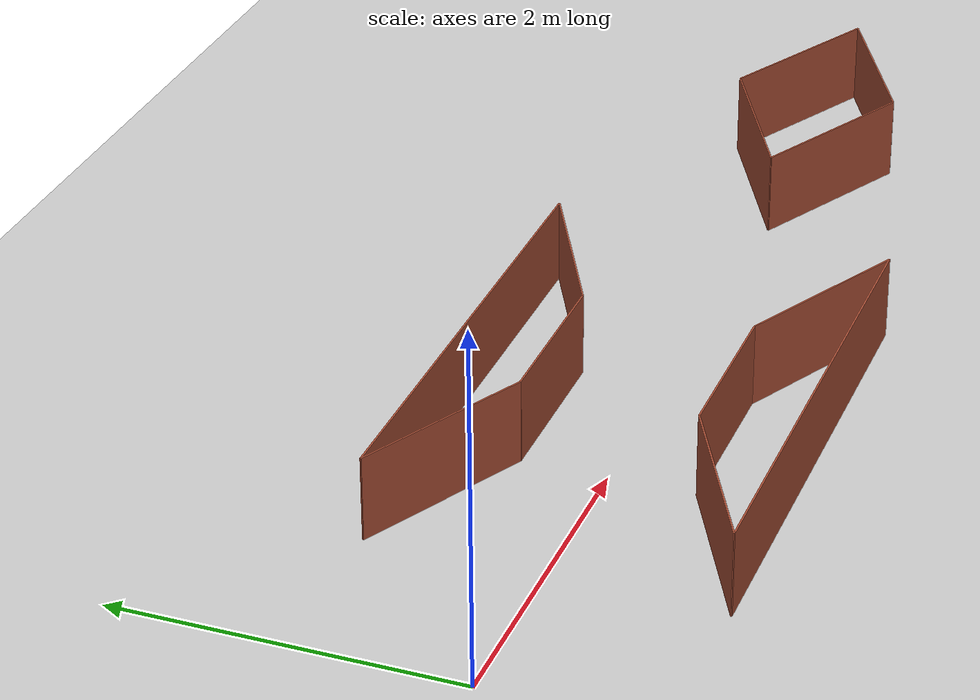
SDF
<?xml version="1.0"?>
 <sdf version="1.6">
  <world name="default">

  <include>
   <uri>model://ground_plane</uri>
  </include>

  <include>
   <uri>model://sun</uri>
  </include>

  <scene>
   <shadows>false</shadows>
  </scene>

  <gui fullscreen='0'>
   <camera name='user_camera'>
    <pose frame=''>0.319654 -0.235002 9.29441 0 1.5138 0.009599</pose>
    <view_controller>orbit</view_controller>
    <projection_type>perspective</projection_type>
   </camera>
  </gui>

  <physics type="ode">
   <real_time_update_rate>1000.0</real_time_update_rate>
   <max_step_size>0.001</max_step_size>
   <real_time_factor>1</real_time_factor>
   <ode>
    <solver>
     <type>quick</type>
     <iters>150</iters>
     <precon_iters>0</precon_iters>
     <sor>1.400000</sor>
     <use_dynamic_moi_rescaling>1</use_dynamic_moi_rescaling>
    </solver>

    <constraints>
     <cfm>0.00001</cfm>
     <erp>0.2</erp>
     <contact_max_correcting_vel>2000.000000</contact_max_correcting_vel>
     <contact_surface_layer>0.01000</contact_surface_layer>
    </constraints>

   </ode>
  </physics>

  <model name="formation4_mixed">
   <static>1</static>
   <include>
    <uri>model://formation4_mixed</uri>
   </include>
  </model>

 </world>
</sdf>

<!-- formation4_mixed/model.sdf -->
<sdf version='1.5'>
                <!-- This SDF file is for enlarging environment -->
                <model name='ros_symbol'>
                    <static>1</static>
                    <link name='symbol'>

            <collision name='obs_wall_1'>
                <pose>2.5 1.0 0.25 0 0 0.000</pose>
                <geometry>
                    <box><size>3.000 0.01 0.5</size></box>
                </geometry>
                <max_contacts>10</max_contacts>
                <surface><bounce/><friction><ode/></friction><contact><ode/></contact></surface>
            </collision>

            <visual name='obs_wall_1'>
                <pose>2.5 1.0 0.25 0 0 0.000</pose>
                <geometry>
                    <box><size>3.000 0.01 0.5</size></box>
                </geometry>
                <material>
                    <script>
                        <uri>file://media/materials/scripts/gazebo.material</uri>
                        <name>Gazebo/Bricks</name>
                    </script>
                </material>
            </visual>

            <collision name='obs_wall_2'>
                <pose>3.5 0.75 0.25 0 0 -2.678</pose>
                <geometry>
                    <box><size>1.118 0.01 0.5</size></box>
                </geometry>
                <max_contacts>10</max_contacts>
                <surface><bounce/><friction><ode/></friction><contact><ode/></contact></surface>
            </collision>

            <visual name='obs_wall_2'>
                <pose>3.5 0.75 0.25 0 0 -2.678</pose>
                <geometry>
                    <box><size>1.118 0.01 0.5</size></box>
                </geometry>
                <material>
                    <script>
                        <uri>file://media/materials/scripts/gazebo.material</uri>
                        <name>Gazebo/Bricks</name>
                    </script>
                </material>
            </visual>

            <collision name='obs_wall_3'>
                <pose>2.5 0.5 0.25 0 0 3.142</pose>
                <geometry>
                    <box><size>1.000 0.01 0.5</size></box>
                </geometry>
                <max_contacts>10</max_contacts>
                <surface><bounce/><friction><ode/></friction><contact><ode/></contact></surface>
            </collision>

            <visual name='obs_wall_3'>
                <pose>2.5 0.5 0.25 0 0 3.142</pose>
                <geometry>
                    <box><size>1.000 0.01 0.5</size></box>
                </geometry>
                <material>
                    <script>
                        <uri>file://media/materials/scripts/gazebo.material</uri>
                        <name>Gazebo/Bricks</name>
                    </script>
                </material>
            </visual>

            <collision name='obs_wall_4'>
                <pose>1.5 0.75 0.25 0 0 2.678</pose>
                <geometry>
                    <box><size>1.118 0.01 0.5</size></box>
                </geometry>
                <max_contacts>10</max_contacts>
                <surface><bounce/><friction><ode/></friction><contact><ode/></contact></surface>
            </collision>

            <visual name='obs_wall_4'>
                <pose>1.5 0.75 0.25 0 0 2.678</pose>
                <geometry>
                    <box><size>1.118 0.01 0.5</size></box>
                </geometry>
                <material>
                    <script>
                        <uri>file://media/materials/scripts/gazebo.material</uri>
                        <name>Gazebo/Bricks</name>
                    </script>
                </material>
            </visual>

            <collision name='obs_wall_5'>
                <pose>2.5 -1.0 0.25 0 0 0.000</pose>
                <geometry>
                    <box><size>3.000 0.01 0.5</size></box>
                </geometry>
                <max_contacts>10</max_contacts>
                <surface><bounce/><friction><ode/></friction><contact><ode/></contact></surface>
            </collision>

            <visual name='obs_wall_5'>
                <pose>2.5 -1.0 0.25 0 0 0.000</pose>
                <geometry>
                    <box><size>3.000 0.01 0.5</size></box>
                </geometry>
                <material>
                    <script>
                        <uri>file://media/materials/scripts/gazebo.material</uri>
                        <name>Gazebo/Bricks</name>
                    </script>
                </material>
            </visual>

            <collision name='obs_wall_6'>
                <pose>3.5 -0.75 0.25 0 0 2.678</pose>
                <geometry>
                    <box><size>1.118 0.01 0.5</size></box>
                </geometry>
                <max_contacts>10</max_contacts>
                <surface><bounce/><friction><ode/></friction><contact><ode/></contact></surface>
            </collision>

            <visual name='obs_wall_6'>
                <pose>3.5 -0.75 0.25 0 0 2.678</pose>
                <geometry>
                    <box><size>1.118 0.01 0.5</size></box>
                </geometry>
                <material>
                    <script>
                        <uri>file://media/materials/scripts/gazebo.material</uri>
                        <name>Gazebo/Bricks</name>
                    </script>
                </material>
            </visual>

            <collision name='obs_wall_7'>
                <pose>2.5 -0.5 0.25 0 0 3.142</pose>
                <geometry>
                    <box><size>1.000 0.01 0.5</size></box>
                </geometry>
                <max_contacts>10</max_contacts>
                <surface><bounce/><friction><ode/></friction><contact><ode/></contact></surface>
            </collision>

            <visual name='obs_wall_7'>
                <pose>2.5 -0.5 0.25 0 0 3.142</pose>
                <geometry>
                    <box><size>1.000 0.01 0.5</size></box>
                </geometry>
                <material>
                    <script>
                        <uri>file://media/materials/scripts/gazebo.material</uri>
                        <name>Gazebo/Bricks</name>
                    </script>
                </material>
            </visual>

            <collision name='obs_wall_8'>
                <pose>1.5 -0.75 0.25 0 0 -2.678</pose>
                <geometry>
                    <box><size>1.118 0.01 0.5</size></box>
                </geometry>
                <max_contacts>10</max_contacts>
                <surface><bounce/><friction><ode/></friction><contact><ode/></contact></surface>
            </collision>

            <visual name='obs_wall_8'>
                <pose>1.5 -0.75 0.25 0 0 -2.678</pose>
                <geometry>
                    <box><size>1.118 0.01 0.5</size></box>
                </geometry>
                <material>
                    <script>
                        <uri>file://media/materials/scripts/gazebo.material</uri>
                        <name>Gazebo/Bricks</name>
                    </script>
                </material>
            </visual>

            <collision name='obs_wall_9'>
                <pose>5.5 0.25 0.25 0 0 0.464</pose>
                <geometry>
                    <box><size>1.118 0.01 0.5</size></box>
                </geometry>
                <max_contacts>10</max_contacts>
                <surface><bounce/><friction><ode/></friction><contact><ode/></contact></surface>
            </collision>

            <visual name='obs_wall_9'>
                <pose>5.5 0.25 0.25 0 0 0.464</pose>
                <geometry>
                    <box><size>1.118 0.01 0.5</size></box>
                </geometry>
                <material>
                    <script>
                        <uri>file://media/materials/scripts/gazebo.material</uri>
                        <name>Gazebo/Bricks</name>
                    </script>
                </material>
            </visual>

            <collision name='obs_wall_10'>
                <pose>6.5 0.25 0.25 0 0 -0.464</pose>
                <geometry>
                    <box><size>1.118 0.01 0.5</size></box>
                </geometry>
                <max_contacts>10</max_contacts>
                <surface><bounce/><friction><ode/></friction><contact><ode/></contact></surface>
            </collision>

            <visual name='obs_wall_10'>
                <pose>6.5 0.25 0.25 0 0 -0.464</pose>
                <geometry>
                    <box><size>1.118 0.01 0.5</size></box>
                </geometry>
                <material>
                    <script>
                        <uri>file://media/materials/scripts/gazebo.material</uri>
                        <name>Gazebo/Bricks</name>
                    </script>
                </material>
            </visual>

            <collision name='obs_wall_11'>
                <pose>6.5 -0.25 0.25 0 0 -2.678</pose>
                <geometry>
                    <box><size>1.118 0.01 0.5</size></box>
                </geometry>
                <max_contacts>10</max_contacts>
                <surface><bounce/><friction><ode/></friction><contact><ode/></contact></surface>
            </collision>

            <visual name='obs_wall_11'>
                <pose>6.5 -0.25 0.25 0 0 -2.678</pose>
                <geometry>
                    <box><size>1.118 0.01 0.5</size></box>
                </geometry>
                <material>
                    <script>
                        <uri>file://media/materials/scripts/gazebo.material</uri>
                        <name>Gazebo/Bricks</name>
                    </script>
                </material>
            </visual>

            <collision name='obs_wall_12'>
                <pose>5.5 -0.25 0.25 0 0 2.678</pose>
                <geometry>
                    <box><size>1.118 0.01 0.5</size></box>
                </geometry>
                <max_contacts>10</max_contacts>
                <surface><bounce/><friction><ode/></friction><contact><ode/></contact></surface>
            </collision>

            <visual name='obs_wall_12'>
                <pose>5.5 -0.25 0.25 0 0 2.678</pose>
                <geometry>
                    <box><size>1.118 0.01 0.5</size></box>
                </geometry>
                <material>
                    <script>
                        <uri>file://media/materials/scripts/gazebo.material</uri>
                        <name>Gazebo/Bricks</name>
                    </script>
                </material>
            </visual>

                    </link>
                </model>
            </sdf>
